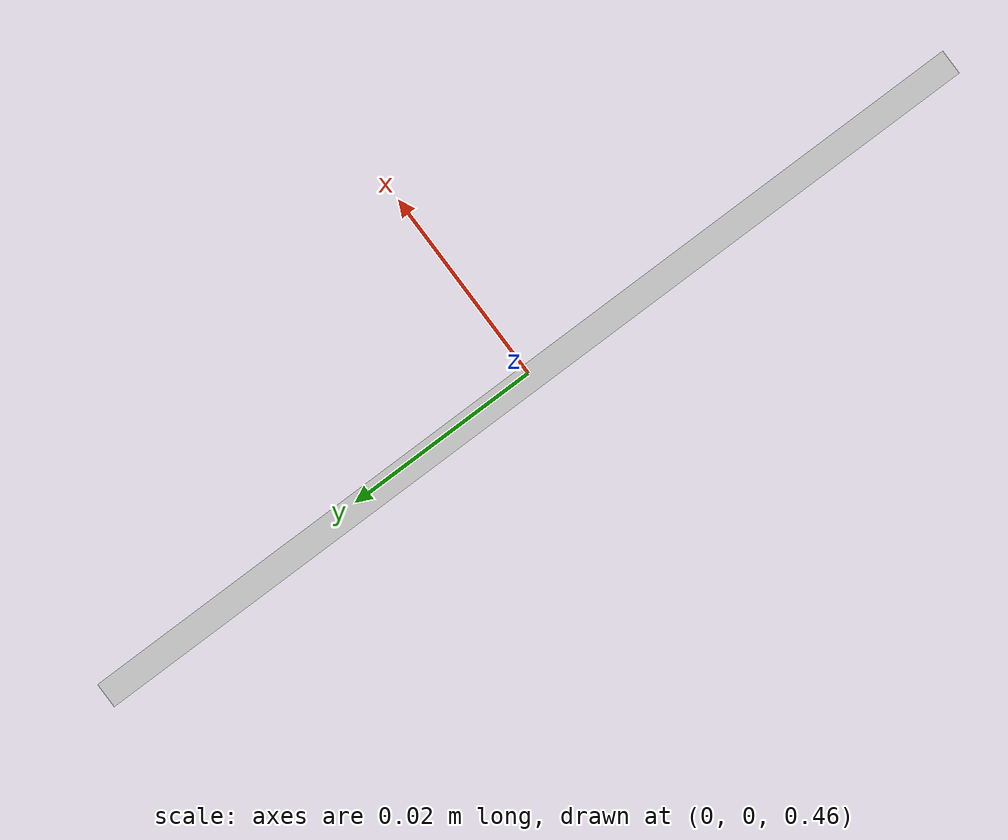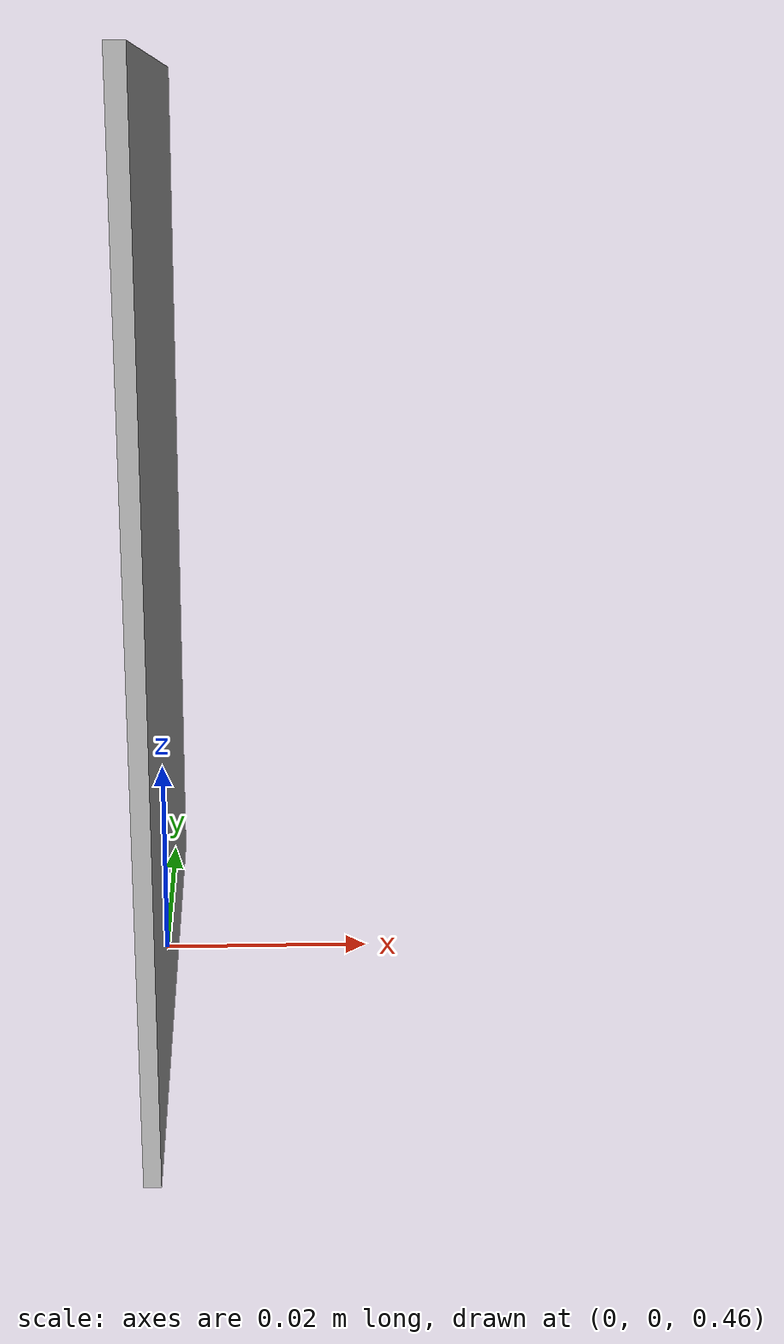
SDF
<?xml version='1.0'?>
<sdf version="1.6">
<model name="card">
  <pose>0 0 0.5 0 0 0</pose>
    <link name="link">
      <inertial>
        <mass>0.002</mass>
        <inertia>
          <ixx>2.35e-05</ixx>
          <ixy>0.0</ixy>
          <ixz>0.0</ixz>
          <iyy>2.35e-05</iyy>
          <iyz>0.0</iyz>
          <izz>2.35e-05</izz>
        </inertia>
      </inertial>
      <collision name="collision">
        <geometry>
          <box>
            <size>0.0015 0.057 0.089</size>
          </box>
        </geometry>
      </collision>
      <visual name="visual">
        <geometry>
          <box>
            <size>0.0015 0.057 0.089</size>
          </box>
        </geometry>
      </visual>
    </link>
  </model>
</sdf>
